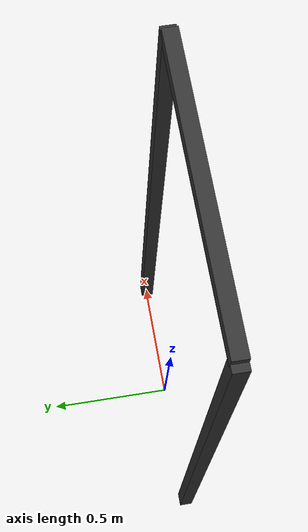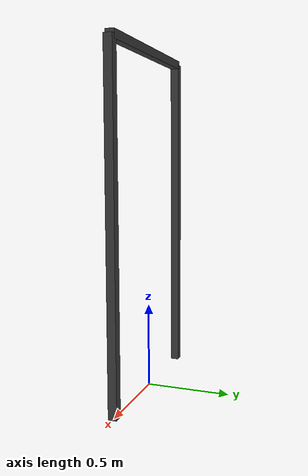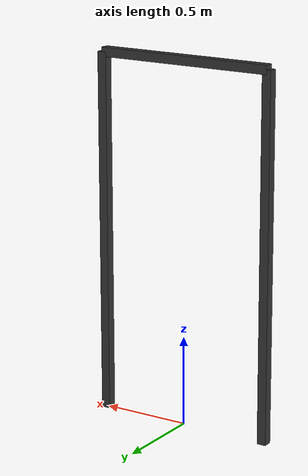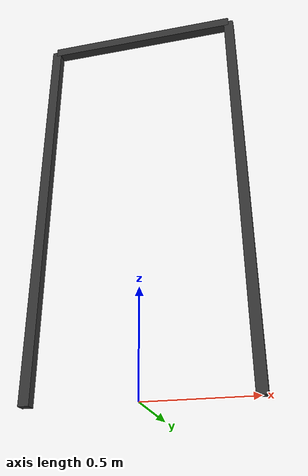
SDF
<?xml version="1.0" ?>
<sdf version="1.7">
  <model name="bracket">
    <!-- Horizontal connecting bar (now the parent) -->
    <link name="horizontal_bar">
      <pose>0 0 2.0 0 0 0</pose>
      <visual name="horizontal_bar_visual">
        <geometry>
          <box>
            <size>1.0 0.05 0.05</size>
          </box>
        </geometry>
        <material>
          <ambient>0.1 0.1 0.1 1</ambient>
          <diffuse>0.2 0.2 0.2 1</diffuse>
          <specular>0.3 0.3 0.3 1</specular>
        </material>
      </visual>
      <collision name="horizontal_bar_collision">
        <geometry>
          <box>
            <size>1.0 0.05 0.05</size>
          </box>
        </geometry>
      </collision>
      <inertial>
        <mass>0.5</mass>
        <inertia>
          <ixx>0.00104</ixx>
          <iyy>0.0417</iyy>
          <izz>0.0417</izz>
          <ixy>0</ixy>
          <ixz>0</ixz>
          <iyz>0</iyz>
        </inertia>
      </inertial>
    </link>

    <!-- Left vertical bar -->
    <link name="left_bar">
      <pose>-0.5 0 1.0 0 0 0</pose>
      <visual name="left_bar_visual">
        <geometry>
          <box>
            <size>0.05 0.05 2.0</size>
          </box>
        </geometry>
        <material>
          <ambient>0.1 0.1 0.1 1</ambient>
          <diffuse>0.2 0.2 0.2 1</diffuse>
          <specular>0.3 0.3 0.3 1</specular>
        </material>
      </visual>
      <collision name="left_bar_collision">
        <geometry>
          <box>
            <size>0.05 0.05 2.0</size>
          </box>
        </geometry>
      </collision>
      <inertial>
        <mass>1.0</mass>
        <inertia>
          <ixx>0.335</ixx>
          <iyy>0.335</iyy>
          <izz>0.00208</izz>
          <ixy>0</ixy>
          <ixz>0</ixz>
          <iyz>0</iyz>
        </inertia>
      </inertial>
    </link>

    <!-- Right vertical bar -->
    <link name="right_bar">
      <pose>0.5 0 1.0 0 0 0</pose>
      <visual name="right_bar_visual">
        <geometry>
          <box>
            <size>0.05 0.05 2.0</size>
          </box>
        </geometry>
        <material>
          <ambient>0.1 0.1 0.1 1</ambient>
          <diffuse>0.2 0.2 0.2 1</diffuse>
          <specular>0.3 0.3 0.3 1</specular>
        </material>
      </visual>
      <collision name="right_bar_collision">
        <geometry>
          <box>
            <size>0.05 0.05 2.0</size>
          </box>
        </geometry>
      </collision>
      <inertial>
        <mass>1.0</mass>
        <inertia>
          <ixx>0.335</ixx>
          <iyy>0.335</iyy>
          <izz>0.00208</izz>
          <ixy>0</ixy>
          <ixz>0</ixz>
          <iyz>0</iyz>
        </inertia>
      </inertial>
    </link>

    <!-- Joint between horizontal bar and left bar -->
    <joint name="horizontal_to_left_joint" type="fixed">
      <parent>horizontal_bar</parent>
      <child>left_bar</child>
      <pose>0 0 -1.0 0 0 0</pose>
    </joint>

    <!-- Joint between horizontal bar and right bar -->
    <joint name="horizontal_to_right_joint" type="fixed">
      <parent>horizontal_bar</parent>
      <child>right_bar</child>
      <pose>0 0 -1.0 0 0 0</pose>
    </joint>
  </model>
</sdf>
